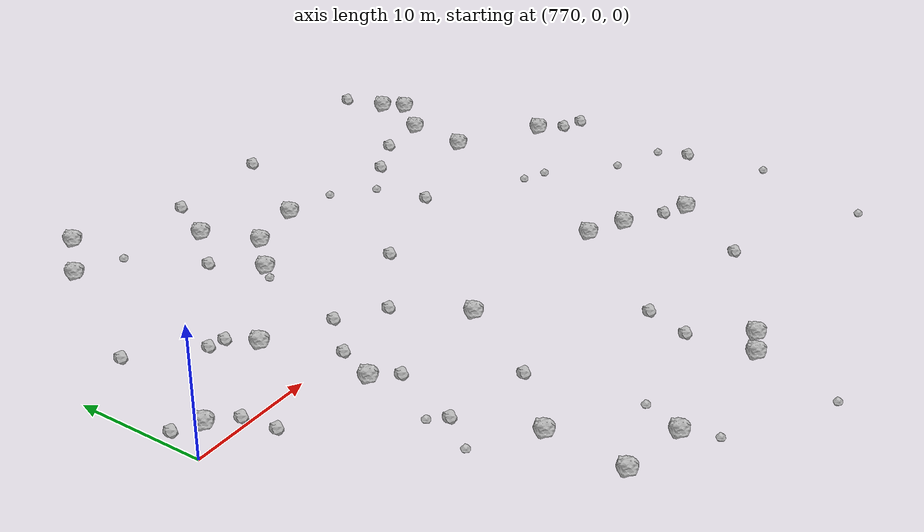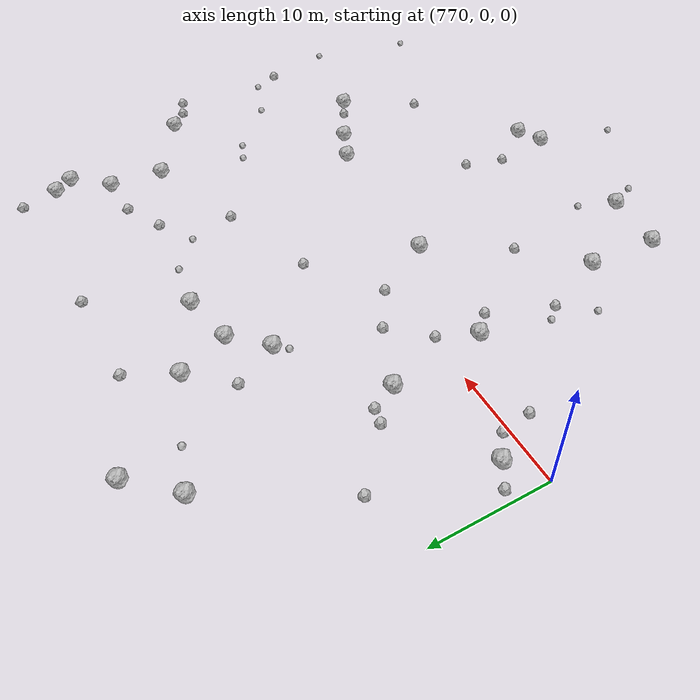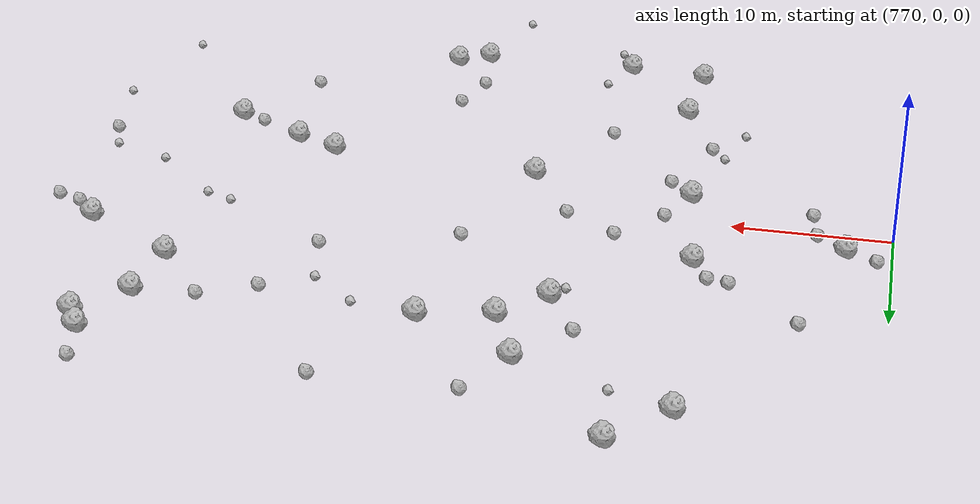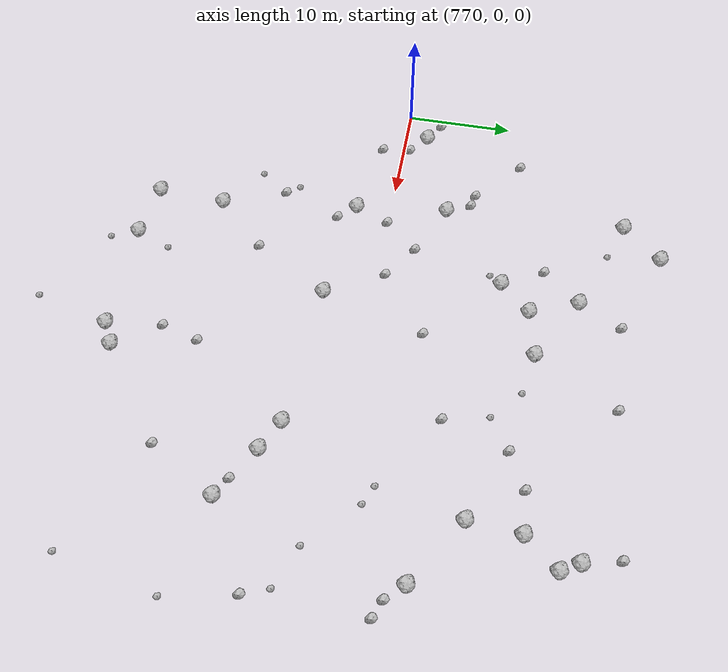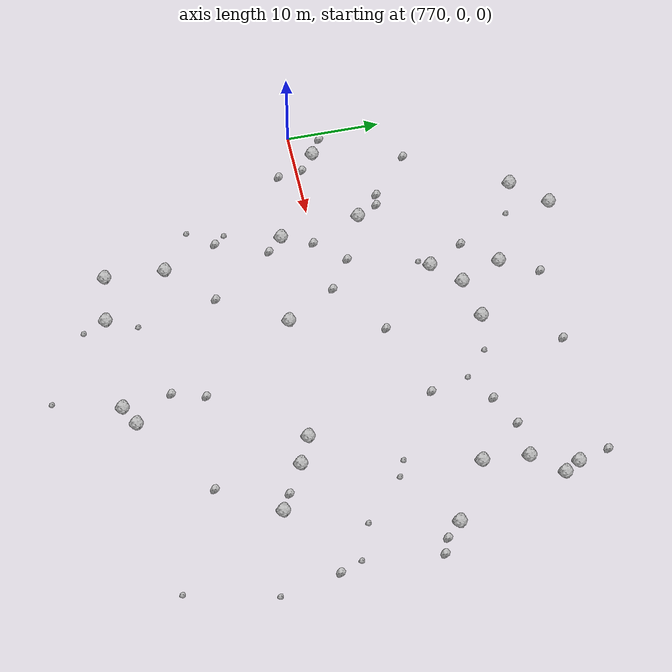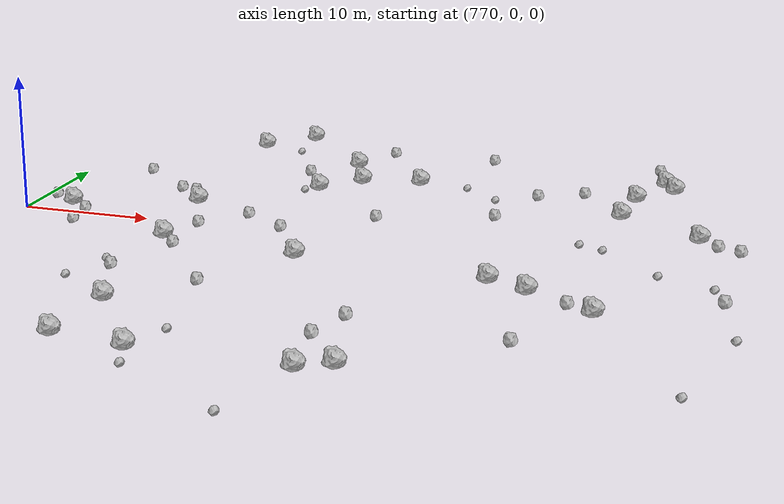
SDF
<sdf version="1.6">
 <world name="default">
  <include><uri>model://sun</uri></include>
  <model name="rock1_20_4">
   <include><uri>model://rock1</uri><pose>816.3792904560781 18.61714093269518 0.5 0 0 0</pose></include>
  </model>
  <model name="rock1_20_5">
   <include><uri>model://rock1</uri><pose>789.5616706441623 11.228230010225253 0.5 0 0 0</pose></include>
  </model>
  <model name="rock1_20_6">
   <include><uri>model://rock1</uri><pose>784.1728530448254 -22.350774405804053 0.5 0 0 0</pose></include>
  </model>
  <model name="rock1_20_7">
   <include><uri>model://rock1</uri><pose>790.5211755764044 18.37679176943915 0.5 0 0 0</pose></include>
  </model>
  <model name="rock1_20_8">
   <include><uri>model://rock1</uri><pose>800.0761785998249 -22.99578885298036 0.5 0 0 0</pose></include>
  </model>
  <model name="rock1_20_9">
   <include><uri>model://rock1</uri><pose>781.018379869995 21.938134490474965 0.5 0 0 0</pose></include>
  </model>
  <model name="rock1_20_10">
   <include><uri>model://rock1</uri><pose>793.3089613376204 -4.574916823699521 0.5 0 0 0</pose></include>
  </model>
  <model name="rock1_20_11">
   <include><uri>model://rock1</uri><pose>810.0526227448917 -6.7664918993789485 0.5 0 0 0</pose></include>
  </model>
  <model name="rock1_20_12">
   <include><uri>model://rock1</uri><pose>814.8466158423216 -9.47072295671579 0.5 0 0 0</pose></include>
  </model>
  <model name="rock1_20_13">
   <include><uri>model://rock1</uri><pose>813.3952900282303 10.896677095995699 0.5 0 0 0</pose></include>
  </model>
  <model name="rock1_20_14">
   <include><uri>model://rock1</uri><pose>796.7826743376733 14.946704407287733 0.5 0 0 0</pose></include>
  </model>
  <model name="rock1_20_15">
   <include><uri>model://rock1</uri><pose>792.2426723501951 14.02654594045935 0.5 0 0 0</pose></include>
  </model>
  <model name="rock1_20_16">
   <include><uri>model://rock1</uri><pose>784.2497720521253 25.449169566402936 0.5 0 0 0</pose></include>
  </model>
  <model name="rock1_20_17">
   <include><uri>model://rock1</uri><pose>789.4375141704213 -23.049956362891912 0.5 0 0 0</pose></include>
  </model>
  <model name="rock1_20_18">
   <include><uri>model://rock1</uri><pose>782.887396979678 -3.333911318178412 0.5 0 0 0</pose></include>
  </model>
  <model name="rock1_20_19">
   <include><uri>model://rock1</uri><pose>772.8653486249076 2.0734488335415975 0.5 0 0 0</pose></include>
  </model>
  <model name="rock1_20_20">
   <include><uri>model://rock1</uri><pose>815.4458797142843 20.24339696982348 0.5 0 0 0</pose></include>
  </model>
  <model name="rock1_20_21">
   <include><uri>model://rock1</uri><pose>781.878806364297 5.1853439537214285 0.5 0 0 0</pose></include>
  </model>
  <model name="rock1_20_22">
   <include><uri>model://rock1</uri><pose>784.5531562784156 -16.061650099388324 0.5 0 0 0</pose></include>
  </model>
  <model name="rock1_20_23">
   <include><uri>model://rock1</uri><pose>807.1633272118607 -5.422579686369662 0.5 0 0 0</pose></include>
  </model>
  <model name="rock1_20_24">
   <include><uri>model://rock1</uri><pose>802.188197190276 -21.922895850199495 0.5 0 0 0</pose></include>
  </model>
  <model name="rock1_20_25">
   <include><uri>model://rock1</uri><pose>813.8224243814842 15.613571007410712 0.5 0 0 0</pose></include>
  </model>
  <model name="rock1_20_26">
   <include><uri>model://rock1</uri><pose>819.553187802748 7.099686066628784 0.5 0 0 0</pose></include>
  </model>
  <model name="rock2_20_0">
   <include><uri>model://rock2</uri><pose>814.5943888571937 23.49328124087755 0.3 0 0 0</pose></include>
  </model>
  <model name="rock2_20_1">
   <include><uri>model://rock2</uri><pose>809.8695079368064 15.420841214592663 0.3 0 0 0</pose></include>
  </model>
  <model name="rock2_20_2">
   <include><uri>model://rock2</uri><pose>804.5115279263379 7.836293526916293 0.3 0 0 0</pose></include>
  </model>
  <model name="rock2_20_3">
   <include><uri>model://rock2</uri><pose>790.3000692461246 0.6688764799694908 0.3 0 0 0</pose></include>
  </model>
  <model name="rock2_20_4">
   <include><uri>model://rock2</uri><pose>820.9782747654515 5.580228904324272 0.3 0 0 0</pose></include>
  </model>
  <model name="rock2_20_5">
   <include><uri>model://rock2</uri><pose>779.4515995225272 7.705956978055319 0.3 0 0 0</pose></include>
  </model>
  <model name="rock2_20_6">
   <include><uri>model://rock2</uri><pose>787.5109391828984 15.00741364570274 0.3 0 0 0</pose></include>
  </model>
  <model name="rock2_20_7">
   <include><uri>model://rock2</uri><pose>799.3578176782474 -17.919760193865883 0.3 0 0 0</pose></include>
  </model>
  <model name="rock2_20_8">
   <include><uri>model://rock2</uri><pose>770.9378945054146 3.23895653084044 0.3 0 0 0</pose></include>
  </model>
  <model name="rock2_20_9">
   <include><uri>model://rock2</uri><pose>822.5851419897059 4.93030896547576 0.3 0 0 0</pose></include>
  </model>
  <model name="rock2_20_10">
   <include><uri>model://rock2</uri><pose>796.1919403848432 5.02017930143996 0.3 0 0 0</pose></include>
  </model>
  <model name="rock2_20_11">
   <include><uri>model://rock2</uri><pose>789.0718027240969 -11.469398187480984 0.3 0 0 0</pose></include>
  </model>
  <model name="rock2_20_12">
   <include><uri>model://rock2</uri><pose>800.3785341244543 -14.500500301039432 0.3 0 0 0</pose></include>
  </model>
  <model name="rock2_20_13">
   <include><uri>model://rock2</uri><pose>786.9637835149177 2.9218294244137653 0.3 0 0 0</pose></include>
  </model>
  <model name="rock2_20_14">
   <include><uri>model://rock2</uri><pose>792.539231577079 22.332014670526952 0.3 0 0 0</pose></include>
  </model>
  <model name="rock2_20_15">
   <include><uri>model://rock2</uri><pose>801.0594631323738 22.498448950079535 0.3 0 0 0</pose></include>
  </model>
  <model name="rock2_20_16">
   <include><uri>model://rock2</uri><pose>775.0776005217704 11.620076874073675 0.3 0 0 0</pose></include>
  </model>
  <model name="rock2_20_17">
   <include><uri>model://rock2</uri><pose>822.4880812002916 -5.369234081625876 0.3 0 0 0</pose></include>
  </model>
  <model name="rock2_20_18">
   <include><uri>model://rock2</uri><pose>774.6565864428105 0.5976144173835785 0.3 0 0 0</pose></include>
  </model>
  <model name="rock2_20_19">
   <include><uri>model://rock2</uri><pose>813.0289475217288 -8.494440416659806 0.3 0 0 0</pose></include>
  </model>
  <model name="rock2_20_20">
   <include><uri>model://rock2</uri><pose>806.5344002598581 13.742655031622832 0.3 0 0 0</pose></include>
  </model>
  <model name="rock2_20_21">
   <include><uri>model://rock2</uri><pose>784.2078846406728 -0.1372287405520325 0.3 0 0 0</pose></include>
  </model>
  <model name="rock2_20_22">
   <include><uri>model://rock2</uri><pose>780.7515223408512 7.413122611724454 0.3 0 0 0</pose></include>
  </model>
  <model name="rock2_20_23">
   <include><uri>model://rock2</uri><pose>782.2385228543604 -10.315822638201649 0.3 0 0 0</pose></include>
  </model>
  <model name="rock2_20_24">
   <include><uri>model://rock2</uri><pose>784.338239413638 -4.909530871601664 0.3 0 0 0</pose></include>
  </model>
  <model name="rock2_20_25">
   <include><uri>model://rock2</uri><pose>775.0279151869388 -2.041054775787128 0.3 0 0 0</pose></include>
  </model>
  <model name="rock2_20_26">
   <include><uri>model://rock2</uri><pose>811.0155664328327 -15.581195563527148 0.3 0 0 0</pose></include>
  </model>
  <model name="rock3_20_0">
   <include><uri>model://rock3</uri><pose>821.6030869994214 -3.139178418928193 0.2 0 0 0</pose></include>
  </model>
  <model name="rock3_20_1">
   <include><uri>model://rock3</uri><pose>788.6948371698803 10.145242509162088 0.2 0 0 0</pose></include>
  </model>
  <model name="rock3_20_2">
   <include><uri>model://rock3</uri><pose>790.7152162879026 -19.877313371345988 0.2 0 0 0</pose></include>
  </model>
  <model name="rock3_20_3">
   <include><uri>model://rock3</uri><pose>784.6083980784393 20.645030993839043 0.2 0 0 0</pose></include>
  </model>
  <model name="rock3_20_4">
   <include><uri>model://rock3</uri><pose>817.7404854021194 -1.6269130747435199 0.2 0 0 0</pose></include>
  </model>
  <model name="rock3_20_5">
   <include><uri>model://rock3</uri><pose>798.0936422578399 -29.896178868803407 0.2 0 0 0</pose></include>
  </model>
  <model name="rock3_20_6">
   <include><uri>model://rock3</uri><pose>813.3658648040151 2.5281150951422546 0.2 0 0 0</pose></include>
  </model>
  <model name="rock3_20_7">
   <include><uri>model://rock3</uri><pose>781.2714437227368 -9.198030115748054 0.2 0 0 0</pose></include>
  </model>
  <model name="rock3_20_8">
   <include><uri>model://rock3</uri><pose>803.5535082830576 11.838519021577646 0.2 0 0 0</pose></include>
  </model>
  <model name="rock3_20_9">
   <include><uri>model://rock3</uri><pose>823.7343587545788 -11.565774841612658 0.2 0 0 0</pose></include>
  </model>
  <model name="rock3_20_10">
   <include><uri>model://rock3</uri><pose>811.6042599444786 3.2863516912745396 0.2 0 0 0</pose></include>
  </model>
  <model name="rock3_20_11">
   <include><uri>model://rock3</uri><pose>821.6274262717296 -20.690930185557 0.2 0 0 0</pose></include>
  </model>
  <model name="rock3_20_12">
   <include><uri>model://rock3</uri><pose>780.1996055334619 -13.024433100868713 0.2 0 0 0</pose></include>
  </model>
  <model name="rock3_20_13">
   <include><uri>model://rock3</uri><pose>800.7375162367022 14.259817989850056 0.2 0 0 0</pose></include>
  </model>
  <model name="rock3_20_14">
   <include><uri>model://rock3</uri><pose>790.3524222246294 -25.492996331388515 0.2 0 0 0</pose></include>
  </model>
 </world>
</sdf>
